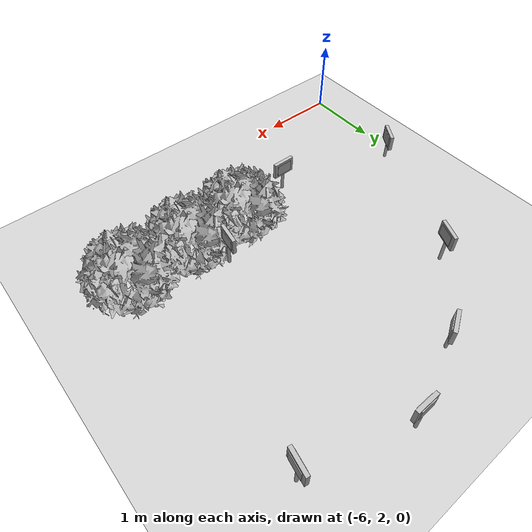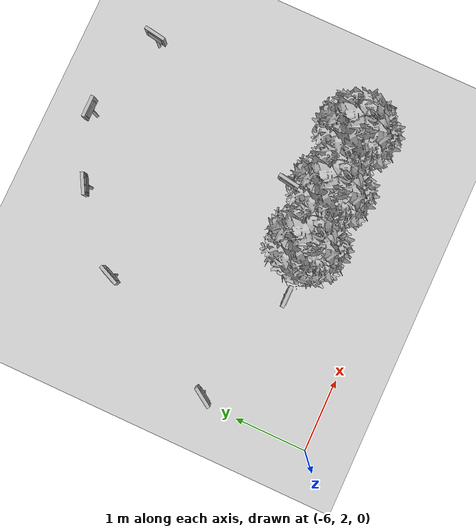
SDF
<sdf version="1.7">
 <world name="default">
  <model name="ground_plane">
   <static>1</static>
   <link name="link">
    <collision name="collision">
     <geometry><plane><normal>0 0 1</normal><size>100 100</size></plane></geometry>
     <surface>
      <contact><collide_bitmask>65535</collide_bitmask></contact>
      <friction><ode><mu>100</mu><mu2>50</mu2></ode></friction>
     </surface>
    </collision>
    <visual name="visual">
     <cast_shadows>0</cast_shadows>
     <geometry><plane><normal>0 0 1</normal><size>100 100</size></plane></geometry>
     <material>
      <script><uri>file://media/materials/scripts/gazebo.material</uri><name>Gazebo/Grey</name></script>
     </material>
    </visual>
   </link>
  </model>
  <model name="abbfre_7">
   <link name="link_0">
    <inertial>
     <mass>1</mass>
     <inertia>
      <ixx>0.166667</ixx>
      <ixy>0</ixy>
      <ixz>0</ixz>
      <iyy>0.166667</iyy>
      <iyz>0</iyz>
      <izz>0.166667</izz>
     </inertia>
    </inertial>
    <pose>0 0 -0 1.60917 -0 0</pose>
    <visual name="visual">
     <geometry><mesh><uri>model://abbfre/meshes/arbufres.obj</uri><scale>1 1 1</scale></mesh></geometry>
    </visual>
    <collision name="collision">
     <geometry><mesh><uri>model://abbfre/meshes/arbufres.obj</uri><scale>1 1 1</scale></mesh></geometry>
     <surface>
      <friction>
       <ode><mu>1</mu><mu2>1</mu2><fdir1>0 0 0</fdir1><slip1>0</slip1><slip2>0</slip2></ode>
       <torsional>
        <coefficient>1</coefficient>
        <patch_radius>0</patch_radius>
        <surface_radius>0</surface_radius>
        <use_patch_radius>1</use_patch_radius>
        <ode><slip>0</slip></ode>
       </torsional>
      </friction>
      <bounce><restitution_coefficient>0</restitution_coefficient><threshold>1e+06</threshold></bounce>
      <contact>
       <collide_without_contact>0</collide_without_contact>
       <collide_without_contact_bitmask>1</collide_without_contact_bitmask>
       <collide_bitmask>1</collide_bitmask>
       <ode>
        <soft_cfm>0</soft_cfm>
        <soft_erp>0.2</soft_erp>
        <kp>1e+13</kp>
        <kd>1</kd>
        <max_vel>0.01</max_vel>
        <min_depth>0</min_depth>
       </ode>
       <bullet>
        <split_impulse>1</split_impulse>
        <split_impulse_penetration_threshold>-0.01</split_impulse_penetration_threshold>
        <soft_cfm>0</soft_cfm>
        <soft_erp>0.2</soft_erp>
        <kp>1e+13</kp>
        <kd>1</kd>
       </bullet>
      </contact>
     </surface>
    </collision>
   </link>
   <static>1</static>
   <pose>-2.67738 3.21551 0 0 -0 0</pose>
  </model>
  <model name="letrero_riego_2">
   <link name="link_0">
    <inertial>
     <mass>0.0543151</mass>
     <inertia>
      <ixx>4.90351e-06</ixx>
      <ixy>0</ixy>
      <ixz>0</ixz>
      <iyy>4.90351e-06</iyy>
      <iyz>0</iyz>
      <izz>1.12837e-07</izz>
     </inertia>
    </inertial>
    <pose>0.002515 0.005109 0.153562 0 -0 0</pose>
    <visual name="visual">
     <geometry><cylinder><radius>0.0203836</radius><length>0.327243</length></cylinder></geometry>
     <material>
      <lighting>1</lighting>
      <script>
       <uri>model://letrero_riego/madera/scripts</uri>
       <uri>model://letrero_riego/madera/textures</uri>
       <name>textur/madera</name>
      </script>
      <shader type="pixel"/>
      <emissive>0 0 0 1</emissive>
     </material>
    </visual>
    <collision name="collision">
     <geometry><cylinder><radius>0.020384</radius><length>0.327243</length></cylinder></geometry>
     <surface>
      <friction>
       <ode><mu>1</mu><mu2>1</mu2><fdir1>0 0 0</fdir1><slip1>0</slip1><slip2>0</slip2></ode>
       <torsional>
        <coefficient>1</coefficient>
        <patch_radius>0</patch_radius>
        <surface_radius>0</surface_radius>
        <use_patch_radius>1</use_patch_radius>
        <ode><slip>0</slip></ode>
       </torsional>
      </friction>
      <bounce><restitution_coefficient>0</restitution_coefficient><threshold>1e+06</threshold></bounce>
      <contact>
       <collide_without_contact>0</collide_without_contact>
       <collide_without_contact_bitmask>1</collide_without_contact_bitmask>
       <collide_bitmask>1</collide_bitmask>
       <ode>
        <soft_cfm>0</soft_cfm>
        <soft_erp>0.2</soft_erp>
        <kp>1e+13</kp>
        <kd>1</kd>
        <max_vel>0.01</max_vel>
        <min_depth>0</min_depth>
       </ode>
       <bullet>
        <split_impulse>1</split_impulse>
        <split_impulse_penetration_threshold>-0.01</split_impulse_penetration_threshold>
        <soft_cfm>0</soft_cfm>
        <soft_erp>0.2</soft_erp>
        <kp>1e+13</kp>
        <kd>1</kd>
       </bullet>
      </contact>
     </surface>
    </collision>
   </link>
   <link name="link_1">
    <inertial>
     <mass>0.00299633</mass>
     <inertia>
      <ixx>1.27855e-05</ixx>
      <ixy>0</ixy>
      <ixz>0</ixz>
      <iyy>3.42923e-05</iyy>
      <iyz>0</iyz>
      <izz>2.25402e-05</izz>
     </inertia>
    </inertial>
    <pose>-0.001542 0.002452 0.422031 0 -0 0</pose>
    <visual name="visual">
     <geometry><box><size>0.296988 0.04549 0.221665</size></box></geometry>
     <material>
      <lighting>1</lighting>
      <script>
       <uri>model://letrero_riego/madera/scripts</uri>
       <uri>model://letrero_riego/madera/textures</uri>
       <name>textur/madera</name>
      </script>
      <shader type="pixel"/>
      <emissive>0 0 0 1</emissive>
     </material>
    </visual>
    <collision name="collision">
     <geometry><box><size>0.296988 0.04549 0.221665</size></box></geometry>
     <surface>
      <friction>
       <ode><mu>1</mu><mu2>1</mu2><fdir1>0 0 0</fdir1><slip1>0</slip1><slip2>0</slip2></ode>
       <torsional>
        <coefficient>1</coefficient>
        <patch_radius>0</patch_radius>
        <surface_radius>0</surface_radius>
        <use_patch_radius>1</use_patch_radius>
        <ode><slip>0</slip></ode>
       </torsional>
      </friction>
      <bounce><restitution_coefficient>0</restitution_coefficient><threshold>1e+06</threshold></bounce>
      <contact>
       <collide_without_contact>0</collide_without_contact>
       <collide_without_contact_bitmask>1</collide_without_contact_bitmask>
       <collide_bitmask>1</collide_bitmask>
       <ode>
        <soft_cfm>0</soft_cfm>
        <soft_erp>0.2</soft_erp>
        <kp>1e+13</kp>
        <kd>1</kd>
        <max_vel>0.01</max_vel>
        <min_depth>0</min_depth>
       </ode>
       <bullet>
        <split_impulse>1</split_impulse>
        <split_impulse_penetration_threshold>-0.01</split_impulse_penetration_threshold>
        <soft_cfm>0</soft_cfm>
        <soft_erp>0.2</soft_erp>
        <kp>1e+13</kp>
        <kd>1</kd>
       </bullet>
      </contact>
     </surface>
    </collision>
   </link>
   <link name="link_2">
    <inertial>
     <mass>0.00173577</mass>
     <inertia>
      <ixx>4.23206e-06</ixx>
      <ixy>0</ixy>
      <ixz>0</ixz>
      <iyy>1.03921e-05</iyy>
      <iyz>0</iyz>
      <izz>7.37287e-06</izz>
     </inertia>
    </inertial>
    <pose>-0.010225 0.002657 0.421501 0 -0 0</pose>
    <visual name="visual">
     <geometry><box><size>0.216284 0.064749 0.15832</size></box></geometry>
     <material>
      <lighting>1</lighting>
      <script>
       <uri>model://letrero_riego/materials/scripts</uri>
       <uri>model://letrero_riego/materials/textures</uri>
       <name>textur/riego</name>
      </script>
      <shader type="pixel"/>
      <emissive>0 0 0 1</emissive>
     </material>
    </visual>
    <collision name="collision">
     <geometry><box><size>0.216284 0.064749 0.15832</size></box></geometry>
     <surface>
      <friction>
       <ode><mu>1</mu><mu2>1</mu2><fdir1>0 0 0</fdir1><slip1>0</slip1><slip2>0</slip2></ode>
       <torsional>
        <coefficient>1</coefficient>
        <patch_radius>0</patch_radius>
        <surface_radius>0</surface_radius>
        <use_patch_radius>1</use_patch_radius>
        <ode><slip>0</slip></ode>
       </torsional>
      </friction>
      <bounce><restitution_coefficient>0</restitution_coefficient><threshold>1e+06</threshold></bounce>
      <contact>
       <collide_without_contact>0</collide_without_contact>
       <collide_without_contact_bitmask>1</collide_without_contact_bitmask>
       <collide_bitmask>1</collide_bitmask>
       <ode>
        <soft_cfm>0</soft_cfm>
        <soft_erp>0.2</soft_erp>
        <kp>1e+13</kp>
        <kd>1</kd>
        <max_vel>0.01</max_vel>
        <min_depth>0</min_depth>
       </ode>
       <bullet>
        <split_impulse>1</split_impulse>
        <split_impulse_penetration_threshold>-0.01</split_impulse_penetration_threshold>
        <soft_cfm>0</soft_cfm>
        <soft_erp>0.2</soft_erp>
        <kp>1e+13</kp>
        <kd>1</kd>
       </bullet>
      </contact>
     </surface>
    </collision>
   </link>
   <joint name="link_0_JOINT_1" type="fixed">
    <parent>link_0</parent>
    <child>link_1</child>
    <physics>
     <ode><limit><cfm>0</cfm><erp>0.2</erp></limit><suspension><cfm>0</cfm><erp>0.2</erp></suspension></ode>
    </physics>
   </joint>
   <joint name="link_0_JOINT_2" type="fixed">
    <parent>link_0</parent>
    <child>link_2</child>
    <physics>
     <ode><limit><cfm>0</cfm><erp>0.2</erp></limit><suspension><cfm>0</cfm><erp>0.2</erp></suspension></ode>
    </physics>
   </joint>
   <static>1</static>
   <pose>-4.93844 5.24039 0 0 -0 1.14693</pose>
  </model>
  <model name="letrero_fresas_II_3">
   <link name="link_0">
    <inertial>
     <mass>0.0543151</mass>
     <inertia>
      <ixx>4.90351e-06</ixx>
      <ixy>0</ixy>
      <ixz>0</ixz>
      <iyy>4.90351e-06</iyy>
      <iyz>0</iyz>
      <izz>1.12837e-07</izz>
     </inertia>
    </inertial>
    <pose>0.002515 0.005109 0.153562 0 -0 0</pose>
    <visual name="visual">
     <geometry><cylinder><radius>0.0203836</radius><length>0.327243</length></cylinder></geometry>
     <material>
      <lighting>1</lighting>
      <script>
       <uri>model://letrero_fresas_II/madera/scripts</uri>
       <uri>model://letrero_fresas_II/madera/textures</uri>
       <name>textur/madera</name>
      </script>
      <shader type="pixel"/>
      <emissive>0 0 0 1</emissive>
     </material>
    </visual>
    <collision name="collision">
     <geometry><cylinder><radius>0.020384</radius><length>0.327243</length></cylinder></geometry>
     <surface>
      <friction>
       <ode><mu>1</mu><mu2>1</mu2><fdir1>0 0 0</fdir1><slip1>0</slip1><slip2>0</slip2></ode>
       <torsional>
        <coefficient>1</coefficient>
        <patch_radius>0</patch_radius>
        <surface_radius>0</surface_radius>
        <use_patch_radius>1</use_patch_radius>
        <ode><slip>0</slip></ode>
       </torsional>
      </friction>
      <bounce><restitution_coefficient>0</restitution_coefficient><threshold>1e+06</threshold></bounce>
      <contact>
       <collide_without_contact>0</collide_without_contact>
       <collide_without_contact_bitmask>1</collide_without_contact_bitmask>
       <collide_bitmask>1</collide_bitmask>
       <ode>
        <soft_cfm>0</soft_cfm>
        <soft_erp>0.2</soft_erp>
        <kp>1e+13</kp>
        <kd>1</kd>
        <max_vel>0.01</max_vel>
        <min_depth>0</min_depth>
       </ode>
       <bullet>
        <split_impulse>1</split_impulse>
        <split_impulse_penetration_threshold>-0.01</split_impulse_penetration_threshold>
        <soft_cfm>0</soft_cfm>
        <soft_erp>0.2</soft_erp>
        <kp>1e+13</kp>
        <kd>1</kd>
       </bullet>
      </contact>
     </surface>
    </collision>
   </link>
   <link name="link_1">
    <inertial>
     <mass>0.00299633</mass>
     <inertia>
      <ixx>1.27855e-05</ixx>
      <ixy>0</ixy>
      <ixz>0</ixz>
      <iyy>3.42923e-05</iyy>
      <iyz>0</iyz>
      <izz>2.25402e-05</izz>
     </inertia>
    </inertial>
    <pose>-0.001542 0.002452 0.422031 0 -0 0</pose>
    <visual name="visual">
     <geometry><box><size>0.296988 0.04549 0.221665</size></box></geometry>
     <material>
      <lighting>1</lighting>
      <script>
       <uri>model://letrero_fresas_II/madera/scripts</uri>
       <uri>model://letrero_fresas_II/madera/textures</uri>
       <name>textur/madera</name>
      </script>
      <shader type="pixel"/>
      <emissive>0 0 0 1</emissive>
     </material>
    </visual>
    <collision name="collision">
     <geometry><box><size>0.296988 0.04549 0.221665</size></box></geometry>
     <surface>
      <friction>
       <ode><mu>1</mu><mu2>1</mu2><fdir1>0 0 0</fdir1><slip1>0</slip1><slip2>0</slip2></ode>
       <torsional>
        <coefficient>1</coefficient>
        <patch_radius>0</patch_radius>
        <surface_radius>0</surface_radius>
        <use_patch_radius>1</use_patch_radius>
        <ode><slip>0</slip></ode>
       </torsional>
      </friction>
      <bounce><restitution_coefficient>0</restitution_coefficient><threshold>1e+06</threshold></bounce>
      <contact>
       <collide_without_contact>0</collide_without_contact>
       <collide_without_contact_bitmask>1</collide_without_contact_bitmask>
       <collide_bitmask>1</collide_bitmask>
       <ode>
        <soft_cfm>0</soft_cfm>
        <soft_erp>0.2</soft_erp>
        <kp>1e+13</kp>
        <kd>1</kd>
        <max_vel>0.01</max_vel>
        <min_depth>0</min_depth>
       </ode>
       <bullet>
        <split_impulse>1</split_impulse>
        <split_impulse_penetration_threshold>-0.01</split_impulse_penetration_threshold>
        <soft_cfm>0</soft_cfm>
        <soft_erp>0.2</soft_erp>
        <kp>1e+13</kp>
        <kd>1</kd>
       </bullet>
      </contact>
     </surface>
    </collision>
   </link>
   <link name="link_2">
    <inertial>
     <mass>0.00173577</mass>
     <inertia>
      <ixx>4.23206e-06</ixx>
      <ixy>0</ixy>
      <ixz>0</ixz>
      <iyy>1.03921e-05</iyy>
      <iyz>0</iyz>
      <izz>7.37287e-06</izz>
     </inertia>
    </inertial>
    <pose>-0.010225 0.002657 0.421501 0 -0 0</pose>
    <visual name="visual">
     <geometry><box><size>0.216284 0.064749 0.15832</size></box></geometry>
     <material>
      <lighting>1</lighting>
      <script>
       <uri>model://letrero_fresas_II/materials/scripts</uri>
       <uri>model://letrero_fresas_II/materials/textures</uri>
       <name>textur/difres</name>
      </script>
      <shader type="pixel"/>
      <emissive>0 0 0 1</emissive>
     </material>
    </visual>
    <collision name="collision">
     <geometry><box><size>0.216284 0.064749 0.15832</size></box></geometry>
     <surface>
      <friction>
       <ode><mu>1</mu><mu2>1</mu2><fdir1>0 0 0</fdir1><slip1>0</slip1><slip2>0</slip2></ode>
       <torsional>
        <coefficient>1</coefficient>
        <patch_radius>0</patch_radius>
        <surface_radius>0</surface_radius>
        <use_patch_radius>1</use_patch_radius>
        <ode><slip>0</slip></ode>
       </torsional>
      </friction>
      <bounce><restitution_coefficient>0</restitution_coefficient><threshold>1e+06</threshold></bounce>
      <contact>
       <collide_without_contact>0</collide_without_contact>
       <collide_without_contact_bitmask>1</collide_without_contact_bitmask>
       <collide_bitmask>1</collide_bitmask>
       <ode>
        <soft_cfm>0</soft_cfm>
        <soft_erp>0.2</soft_erp>
        <kp>1e+13</kp>
        <kd>1</kd>
        <max_vel>0.01</max_vel>
        <min_depth>0</min_depth>
       </ode>
       <bullet>
        <split_impulse>1</split_impulse>
        <split_impulse_penetration_threshold>-0.01</split_impulse_penetration_threshold>
        <soft_cfm>0</soft_cfm>
        <soft_erp>0.2</soft_erp>
        <kp>1e+13</kp>
        <kd>1</kd>
       </bullet>
      </contact>
     </surface>
    </collision>
   </link>
   <joint name="link_0_JOINT_1" type="fixed">
    <parent>link_0</parent>
    <child>link_1</child>
    <physics>
     <ode><limit><cfm>0</cfm><erp>0.2</erp></limit><suspension><cfm>0</cfm><erp>0.2</erp></suspension></ode>
    </physics>
   </joint>
   <joint name="link_0_JOINT_2" type="fixed">
    <parent>link_0</parent>
    <child>link_2</child>
    <physics>
     <ode><limit><cfm>0</cfm><erp>0.2</erp></limit><suspension><cfm>0</cfm><erp>0.2</erp></suspension></ode>
    </physics>
   </joint>
   <static>1</static>
   <pose>-2.90821 3.66266 0 0 0 -1.72951</pose>
  </model>
  <model name="letrero_insecto_3">
   <link name="link_0">
    <inertial>
     <mass>0.00543151</mass>
     <inertia>
      <ixx>4.90351e-06</ixx>
      <ixy>0</ixy>
      <ixz>0</ixz>
      <iyy>4.90351e-06</iyy>
      <iyz>0</iyz>
      <izz>1.12837e-07</izz>
     </inertia>
    </inertial>
    <pose>0.002372 -0.000902 -0.178803 0 -0 0</pose>
    <visual name="visual">
     <geometry><cylinder><radius>0.0203836</radius><length>0.327243</length></cylinder></geometry>
     <material>
      <lighting>1</lighting>
      <script>
       <uri>model://letrero_insecto/madera/scripts</uri>
       <uri>model://letrero_insecto/madera/textures</uri>
       <name>textur/madera</name>
      </script>
      <shader type="pixel"/>
      <emissive>0 0 0 1</emissive>
     </material>
    </visual>
    <collision name="collision">
     <geometry><cylinder><radius>0.020384</radius><length>0.327243</length></cylinder></geometry>
     <surface>
      <friction>
       <ode><mu>1</mu><mu2>1</mu2><fdir1>0 0 0</fdir1><slip1>0</slip1><slip2>0</slip2></ode>
       <torsional>
        <coefficient>1</coefficient>
        <patch_radius>0</patch_radius>
        <surface_radius>0</surface_radius>
        <use_patch_radius>1</use_patch_radius>
        <ode><slip>0</slip></ode>
       </torsional>
      </friction>
      <bounce><restitution_coefficient>0</restitution_coefficient><threshold>1e+06</threshold></bounce>
      <contact>
       <collide_without_contact>0</collide_without_contact>
       <collide_without_contact_bitmask>1</collide_without_contact_bitmask>
       <collide_bitmask>1</collide_bitmask>
       <ode>
        <soft_cfm>0</soft_cfm>
        <soft_erp>0.2</soft_erp>
        <kp>1e+13</kp>
        <kd>1</kd>
        <max_vel>0.01</max_vel>
        <min_depth>0</min_depth>
       </ode>
       <bullet>
        <split_impulse>1</split_impulse>
        <split_impulse_penetration_threshold>-0.01</split_impulse_penetration_threshold>
        <soft_cfm>0</soft_cfm>
        <soft_erp>0.2</soft_erp>
        <kp>1e+13</kp>
        <kd>1</kd>
       </bullet>
      </contact>
     </surface>
    </collision>
   </link>
   <link name="link_1">
    <inertial>
     <mass>0.00299633</mass>
     <inertia>
      <ixx>1.27855e-05</ixx>
      <ixy>0</ixy>
      <ixz>0</ixz>
      <iyy>3.42923e-05</iyy>
      <iyz>0</iyz>
      <izz>2.25402e-05</izz>
     </inertia>
    </inertial>
    <pose>-0.001685 -0.003559 0.089666 0 -0 0</pose>
    <visual name="visual">
     <geometry><box><size>0.296988 0.04549 0.221665</size></box></geometry>
     <material>
      <lighting>1</lighting>
      <script>
       <uri>model://letrero_insecto/madera/scripts</uri>
       <uri>model://letrero_insecto/madera/textures</uri>
       <name>textur/madera</name>
      </script>
      <shader type="pixel"/>
      <emissive>0 0 0 1</emissive>
     </material>
    </visual>
    <collision name="collision">
     <geometry><box><size>0.296988 0.04549 0.221665</size></box></geometry>
     <surface>
      <friction>
       <ode><mu>1</mu><mu2>1</mu2><fdir1>0 0 0</fdir1><slip1>0</slip1><slip2>0</slip2></ode>
       <torsional>
        <coefficient>1</coefficient>
        <patch_radius>0</patch_radius>
        <surface_radius>0</surface_radius>
        <use_patch_radius>1</use_patch_radius>
        <ode><slip>0</slip></ode>
       </torsional>
      </friction>
      <bounce><restitution_coefficient>0</restitution_coefficient><threshold>1e+06</threshold></bounce>
      <contact>
       <collide_without_contact>0</collide_without_contact>
       <collide_without_contact_bitmask>1</collide_without_contact_bitmask>
       <collide_bitmask>1</collide_bitmask>
       <ode>
        <soft_cfm>0</soft_cfm>
        <soft_erp>0.2</soft_erp>
        <kp>1e+13</kp>
        <kd>1</kd>
        <max_vel>0.01</max_vel>
        <min_depth>0</min_depth>
       </ode>
       <bullet>
        <split_impulse>1</split_impulse>
        <split_impulse_penetration_threshold>-0.01</split_impulse_penetration_threshold>
        <soft_cfm>0</soft_cfm>
        <soft_erp>0.2</soft_erp>
        <kp>1e+13</kp>
        <kd>1</kd>
       </bullet>
      </contact>
     </surface>
    </collision>
   </link>
   <link name="link_2">
    <inertial>
     <mass>0.00219695</mass>
     <inertia>
      <ixx>5.34209e-06</ixx>
      <ixy>0</ixy>
      <ixz>0</ixz>
      <iyy>1.31531e-05</iyy>
      <iyz>0</iyz>
      <izz>9.31738e-06</izz>
     </inertia>
    </inertial>
    <pose>-0.001275 -0.005928 0.089136 0 -0 0</pose>
    <visual name="visual">
     <geometry><box><size>0.216284 0.06414 0.15832</size></box></geometry>
     <material>
      <lighting>1</lighting>
      <script>
       <uri>model://letrero_insecto/materials/scripts</uri>
       <uri>model://letrero_insecto/materials/textures</uri>
       <name>textur/insec</name>
      </script>
      <shader type="pixel"/>
      <emissive>0 0 0 1</emissive>
     </material>
    </visual>
    <collision name="collision">
     <geometry><box><size>0.216284 0.06414 0.15832</size></box></geometry>
     <surface>
      <friction>
       <ode><mu>1</mu><mu2>1</mu2><fdir1>0 0 0</fdir1><slip1>0</slip1><slip2>0</slip2></ode>
       <torsional>
        <coefficient>1</coefficient>
        <patch_radius>0</patch_radius>
        <surface_radius>0</surface_radius>
        <use_patch_radius>1</use_patch_radius>
        <ode><slip>0</slip></ode>
       </torsional>
      </friction>
      <bounce><restitution_coefficient>0</restitution_coefficient><threshold>1e+06</threshold></bounce>
      <contact>
       <collide_without_contact>0</collide_without_contact>
       <collide_without_contact_bitmask>1</collide_without_contact_bitmask>
       <collide_bitmask>1</collide_bitmask>
       <ode>
        <soft_cfm>0</soft_cfm>
        <soft_erp>0.2</soft_erp>
        <kp>1e+13</kp>
        <kd>1</kd>
        <max_vel>0.01</max_vel>
        <min_depth>0</min_depth>
       </ode>
       <bullet>
        <split_impulse>1</split_impulse>
        <split_impulse_penetration_threshold>-0.01</split_impulse_penetration_threshold>
        <soft_cfm>0</soft_cfm>
        <soft_erp>0.2</soft_erp>
        <kp>1e+13</kp>
        <kd>1</kd>
       </bullet>
      </contact>
     </surface>
    </collision>
   </link>
   <joint name="link_0_JOINT_1" type="fixed">
    <parent>link_0</parent>
    <child>link_1</child>
    <physics>
     <ode><limit><cfm>0</cfm><erp>0.2</erp></limit><suspension><cfm>0</cfm><erp>0.2</erp></suspension></ode>
    </physics>
   </joint>
   <joint name="link_0_JOINT_2" type="fixed">
    <parent>link_0</parent>
    <child>link_2</child>
    <physics>
     <ode><limit><cfm>0</cfm><erp>0.2</erp></limit><suspension><cfm>0</cfm><erp>0.2</erp></suspension></ode>
    </physics>
   </joint>
   <static>1</static>
   <pose>-4.02372 6.04739 0.301064 0 -0 0.508877</pose>
  </model>
  <model name="letrero_pajaro_3">
   <link name="link_0">
    <inertial>
     <mass>0.0543151</mass>
     <inertia>
      <ixx>4.90351e-06</ixx>
      <ixy>0</ixy>
      <ixz>0</ixz>
      <iyy>4.90351e-06</iyy>
      <iyz>0</iyz>
      <izz>1.12837e-07</izz>
     </inertia>
    </inertial>
    <pose>0.002515 0.005109 0.153562 0 -0 0</pose>
    <visual name="visual">
     <geometry><cylinder><radius>0.0203836</radius><length>0.327243</length></cylinder></geometry>
     <material>
      <lighting>1</lighting>
      <script>
       <uri>model://letrero_pajaro/madera/scripts</uri>
       <uri>model://letrero_pajaro/madera/textures</uri>
       <name>textur/madera</name>
      </script>
      <shader type="pixel"/>
      <emissive>0 0 0 1</emissive>
     </material>
    </visual>
    <collision name="collision">
     <geometry><cylinder><radius>0.020384</radius><length>0.327243</length></cylinder></geometry>
     <surface>
      <friction>
       <ode><mu>1</mu><mu2>1</mu2><fdir1>0 0 0</fdir1><slip1>0</slip1><slip2>0</slip2></ode>
       <torsional>
        <coefficient>1</coefficient>
        <patch_radius>0</patch_radius>
        <surface_radius>0</surface_radius>
        <use_patch_radius>1</use_patch_radius>
        <ode><slip>0</slip></ode>
       </torsional>
      </friction>
      <bounce><restitution_coefficient>0</restitution_coefficient><threshold>1e+06</threshold></bounce>
      <contact>
       <collide_without_contact>0</collide_without_contact>
       <collide_without_contact_bitmask>1</collide_without_contact_bitmask>
       <collide_bitmask>1</collide_bitmask>
       <ode>
        <soft_cfm>0</soft_cfm>
        <soft_erp>0.2</soft_erp>
        <kp>1e+13</kp>
        <kd>1</kd>
        <max_vel>0.01</max_vel>
        <min_depth>0</min_depth>
       </ode>
       <bullet>
        <split_impulse>1</split_impulse>
        <split_impulse_penetration_threshold>-0.01</split_impulse_penetration_threshold>
        <soft_cfm>0</soft_cfm>
        <soft_erp>0.2</soft_erp>
        <kp>1e+13</kp>
        <kd>1</kd>
       </bullet>
      </contact>
     </surface>
    </collision>
   </link>
   <link name="link_1">
    <inertial>
     <mass>0.00299633</mass>
     <inertia>
      <ixx>1.27855e-05</ixx>
      <ixy>0</ixy>
      <ixz>0</ixz>
      <iyy>3.42923e-05</iyy>
      <iyz>0</iyz>
      <izz>2.25402e-05</izz>
     </inertia>
    </inertial>
    <pose>-0.001542 0.002452 0.422031 0 -0 0</pose>
    <visual name="visual">
     <geometry><box><size>0.296988 0.04549 0.221665</size></box></geometry>
     <material>
      <lighting>1</lighting>
      <script>
       <uri>model://letrero_pajaro/madera/scripts</uri>
       <uri>model://letrero_pajaro/madera/textures</uri>
       <name>textur/madera</name>
      </script>
      <shader type="pixel"/>
      <emissive>0 0 0 1</emissive>
     </material>
    </visual>
    <collision name="collision">
     <geometry><box><size>0.296988 0.04549 0.221665</size></box></geometry>
     <surface>
      <friction>
       <ode><mu>1</mu><mu2>1</mu2><fdir1>0 0 0</fdir1><slip1>0</slip1><slip2>0</slip2></ode>
       <torsional>
        <coefficient>1</coefficient>
        <patch_radius>0</patch_radius>
        <surface_radius>0</surface_radius>
        <use_patch_radius>1</use_patch_radius>
        <ode><slip>0</slip></ode>
       </torsional>
      </friction>
      <bounce><restitution_coefficient>0</restitution_coefficient><threshold>1e+06</threshold></bounce>
      <contact>
       <collide_without_contact>0</collide_without_contact>
       <collide_without_contact_bitmask>1</collide_without_contact_bitmask>
       <collide_bitmask>1</collide_bitmask>
       <ode>
        <soft_cfm>0</soft_cfm>
        <soft_erp>0.2</soft_erp>
        <kp>1e+13</kp>
        <kd>1</kd>
        <max_vel>0.01</max_vel>
        <min_depth>0</min_depth>
       </ode>
       <bullet>
        <split_impulse>1</split_impulse>
        <split_impulse_penetration_threshold>-0.01</split_impulse_penetration_threshold>
        <soft_cfm>0</soft_cfm>
        <soft_erp>0.2</soft_erp>
        <kp>1e+13</kp>
        <kd>1</kd>
       </bullet>
      </contact>
     </surface>
    </collision>
   </link>
   <link name="link_2">
    <inertial>
     <mass>0.00173577</mass>
     <inertia>
      <ixx>4.23206e-06</ixx>
      <ixy>0</ixy>
      <ixz>0</ixz>
      <iyy>1.03921e-05</iyy>
      <iyz>0</iyz>
      <izz>7.37287e-06</izz>
     </inertia>
    </inertial>
    <pose>-0.010225 0.002657 0.421501 0 -0 0</pose>
    <visual name="visual">
     <geometry><box><size>0.216284 0.064749 0.15832</size></box></geometry>
     <material>
      <lighting>1</lighting>
      <script>
       <uri>model://letrero_pajaro/materials/scripts</uri>
       <uri>model://letrero_pajaro/materials/textures</uri>
       <name>textur/paj</name>
      </script>
      <shader type="pixel"/>
      <emissive>0 0 0 1</emissive>
     </material>
    </visual>
    <collision name="collision">
     <geometry><box><size>0.216284 0.064749 0.15832</size></box></geometry>
     <surface>
      <friction>
       <ode><mu>1</mu><mu2>1</mu2><fdir1>0 0 0</fdir1><slip1>0</slip1><slip2>0</slip2></ode>
       <torsional>
        <coefficient>1</coefficient>
        <patch_radius>0</patch_radius>
        <surface_radius>0</surface_radius>
        <use_patch_radius>1</use_patch_radius>
        <ode><slip>0</slip></ode>
       </torsional>
      </friction>
      <bounce><restitution_coefficient>0</restitution_coefficient><threshold>1e+06</threshold></bounce>
      <contact>
       <collide_without_contact>0</collide_without_contact>
       <collide_without_contact_bitmask>1</collide_without_contact_bitmask>
       <collide_bitmask>1</collide_bitmask>
       <ode>
        <soft_cfm>0</soft_cfm>
        <soft_erp>0.2</soft_erp>
        <kp>1e+13</kp>
        <kd>1</kd>
        <max_vel>0.01</max_vel>
        <min_depth>0</min_depth>
       </ode>
       <bullet>
        <split_impulse>1</split_impulse>
        <split_impulse_penetration_threshold>-0.01</split_impulse_penetration_threshold>
        <soft_cfm>0</soft_cfm>
        <soft_erp>0.2</soft_erp>
        <kp>1e+13</kp>
        <kd>1</kd>
       </bullet>
      </contact>
     </surface>
    </collision>
   </link>
   <joint name="link_0_JOINT_1" type="fixed">
    <parent>link_0</parent>
    <child>link_1</child>
    <physics>
     <ode><limit><cfm>0</cfm><erp>0.2</erp></limit><suspension><cfm>0</cfm><erp>0.2</erp></suspension></ode>
    </physics>
   </joint>
   <joint name="link_0_JOINT_2" type="fixed">
    <parent>link_0</parent>
    <child>link_2</child>
    <physics>
     <ode><limit><cfm>0</cfm><erp>0.2</erp></limit><suspension><cfm>0</cfm><erp>0.2</erp></suspension></ode>
    </physics>
   </joint>
   <static>1</static>
   <pose>-1.86587 6.04014 -0.049337 0 -0 1.40164</pose>
  </model>
  <model name="letrero_cheems_2">
   <link name="link_0">
    <inertial>
     <mass>0.00543151</mass>
     <inertia>
      <ixx>4.90351e-06</ixx>
      <ixy>0</ixy>
      <ixz>0</ixz>
      <iyy>4.90351e-06</iyy>
      <iyz>0</iyz>
      <izz>1.12837e-07</izz>
     </inertia>
    </inertial>
    <pose>0.002372 -0.000902 -0.178803 0 -0 0</pose>
    <visual name="visual">
     <geometry><cylinder><radius>0.0203836</radius><length>0.327243</length></cylinder></geometry>
     <material>
      <lighting>1</lighting>
      <script>
       <uri>model://letrero_cheems/madera/scripts</uri>
       <uri>model://letrero_cheems/madera/textures</uri>
       <name>textur/madera</name>
      </script>
      <shader type="pixel"/>
      <emissive>0 0 0 1</emissive>
     </material>
    </visual>
    <collision name="collision">
     <geometry><cylinder><radius>0.020384</radius><length>0.327243</length></cylinder></geometry>
     <surface>
      <friction>
       <ode><mu>1</mu><mu2>1</mu2><fdir1>0 0 0</fdir1><slip1>0</slip1><slip2>0</slip2></ode>
       <torsional>
        <coefficient>1</coefficient>
        <patch_radius>0</patch_radius>
        <surface_radius>0</surface_radius>
        <use_patch_radius>1</use_patch_radius>
        <ode><slip>0</slip></ode>
       </torsional>
      </friction>
      <bounce><restitution_coefficient>0</restitution_coefficient><threshold>1e+06</threshold></bounce>
      <contact>
       <collide_without_contact>0</collide_without_contact>
       <collide_without_contact_bitmask>1</collide_without_contact_bitmask>
       <collide_bitmask>1</collide_bitmask>
       <ode>
        <soft_cfm>0</soft_cfm>
        <soft_erp>0.2</soft_erp>
        <kp>1e+13</kp>
        <kd>1</kd>
        <max_vel>0.01</max_vel>
        <min_depth>0</min_depth>
       </ode>
       <bullet>
        <split_impulse>1</split_impulse>
        <split_impulse_penetration_threshold>-0.01</split_impulse_penetration_threshold>
        <soft_cfm>0</soft_cfm>
        <soft_erp>0.2</soft_erp>
        <kp>1e+13</kp>
        <kd>1</kd>
       </bullet>
      </contact>
     </surface>
    </collision>
   </link>
   <link name="link_1">
    <inertial>
     <mass>0.00299633</mass>
     <inertia>
      <ixx>1.27855e-05</ixx>
      <ixy>0</ixy>
      <ixz>0</ixz>
      <iyy>3.42923e-05</iyy>
      <iyz>0</iyz>
      <izz>2.25402e-05</izz>
     </inertia>
    </inertial>
    <pose>-0.001685 -0.003559 0.089666 0 -0 0</pose>
    <visual name="visual">
     <geometry><box><size>0.296988 0.04549 0.221665</size></box></geometry>
     <material>
      <lighting>1</lighting>
      <script>
       <uri>model://letrero_cheems/madera/scripts</uri>
       <uri>model://letrero_cheems/madera/textures</uri>
       <name>textur/madera</name>
      </script>
      <shader type="pixel"/>
      <emissive>0 0 0 1</emissive>
     </material>
    </visual>
    <collision name="collision">
     <geometry><box><size>0.296988 0.04549 0.221665</size></box></geometry>
     <surface>
      <friction>
       <ode><mu>1</mu><mu2>1</mu2><fdir1>0 0 0</fdir1><slip1>0</slip1><slip2>0</slip2></ode>
       <torsional>
        <coefficient>1</coefficient>
        <patch_radius>0</patch_radius>
        <surface_radius>0</surface_radius>
        <use_patch_radius>1</use_patch_radius>
        <ode><slip>0</slip></ode>
       </torsional>
      </friction>
      <bounce><restitution_coefficient>0</restitution_coefficient><threshold>1e+06</threshold></bounce>
      <contact>
       <collide_without_contact>0</collide_without_contact>
       <collide_without_contact_bitmask>1</collide_without_contact_bitmask>
       <collide_bitmask>1</collide_bitmask>
       <ode>
        <soft_cfm>0</soft_cfm>
        <soft_erp>0.2</soft_erp>
        <kp>1e+13</kp>
        <kd>1</kd>
        <max_vel>0.01</max_vel>
        <min_depth>0</min_depth>
       </ode>
       <bullet>
        <split_impulse>1</split_impulse>
        <split_impulse_penetration_threshold>-0.01</split_impulse_penetration_threshold>
        <soft_cfm>0</soft_cfm>
        <soft_erp>0.2</soft_erp>
        <kp>1e+13</kp>
        <kd>1</kd>
       </bullet>
      </contact>
     </surface>
    </collision>
   </link>
   <link name="link_2">
    <inertial>
     <mass>0.00219695</mass>
     <inertia>
      <ixx>5.34209e-06</ixx>
      <ixy>0</ixy>
      <ixz>0</ixz>
      <iyy>1.31531e-05</iyy>
      <iyz>0</iyz>
      <izz>9.31738e-06</izz>
     </inertia>
    </inertial>
    <pose>-0.001275 -0.005928 0.089136 0 -0 0</pose>
    <visual name="visual">
     <geometry><box><size>0.216284 0.06414 0.15832</size></box></geometry>
     <material>
      <lighting>1</lighting>
      <script>
       <uri>model://letrero_cheems/materials/scripts</uri>
       <uri>model://letrero_cheems/materials/textures</uri>
       <name>textur/cheems</name>
      </script>
      <shader type="pixel"/>
      <emissive>0 0 0 1</emissive>
     </material>
    </visual>
    <collision name="collision">
     <geometry><box><size>0.216284 0.06414 0.15832</size></box></geometry>
     <surface>
      <friction>
       <ode><mu>1</mu><mu2>1</mu2><fdir1>0 0 0</fdir1><slip1>0</slip1><slip2>0</slip2></ode>
       <torsional>
        <coefficient>1</coefficient>
        <patch_radius>0</patch_radius>
        <surface_radius>0</surface_radius>
        <use_patch_radius>1</use_patch_radius>
        <ode><slip>0</slip></ode>
       </torsional>
      </friction>
      <bounce><restitution_coefficient>0</restitution_coefficient><threshold>1e+06</threshold></bounce>
      <contact>
       <collide_without_contact>0</collide_without_contact>
       <collide_without_contact_bitmask>1</collide_without_contact_bitmask>
       <collide_bitmask>1</collide_bitmask>
       <ode>
        <soft_cfm>0</soft_cfm>
        <soft_erp>0.2</soft_erp>
        <kp>1e+13</kp>
        <kd>1</kd>
        <max_vel>0.01</max_vel>
        <min_depth>0</min_depth>
       </ode>
       <bullet>
        <split_impulse>1</split_impulse>
        <split_impulse_penetration_threshold>-0.01</split_impulse_penetration_threshold>
        <soft_cfm>0</soft_cfm>
        <soft_erp>0.2</soft_erp>
        <kp>1e+13</kp>
        <kd>1</kd>
       </bullet>
      </contact>
     </surface>
    </collision>
   </link>
   <joint name="link_0_JOINT_1" type="fixed">
    <parent>link_0</parent>
    <child>link_1</child>
    <physics>
     <ode><limit><cfm>0</cfm><erp>0.2</erp></limit><suspension><cfm>0</cfm><erp>0.2</erp></suspension></ode>
    </physics>
   </joint>
   <joint name="link_0_JOINT_2" type="fixed">
    <parent>link_0</parent>
    <child>link_2</child>
    <physics>
     <ode><limit><cfm>0</cfm><erp>0.2</erp></limit><suspension><cfm>0</cfm><erp>0.2</erp></suspension></ode>
    </physics>
   </joint>
   <static>1</static>
   <pose>-5.8539 3.52658 0.243463 0 -0 0.995347</pose>
  </model>
  <model name="letrero_fresa_4">
   <link name="link_0">
    <inertial>
     <mass>0.00543151</mass>
     <inertia>
      <ixx>4.90351e-06</ixx>
      <ixy>0</ixy>
      <ixz>0</ixz>
      <iyy>4.90351e-06</iyy>
      <iyz>0</iyz>
      <izz>1.12837e-07</izz>
     </inertia>
    </inertial>
    <pose>0.002372 -0.000902 -0.178803 0 -0 0</pose>
    <visual name="visual">
     <geometry><cylinder><radius>0.0203836</radius><length>0.327243</length></cylinder></geometry>
     <material>
      <lighting>1</lighting>
      <script>
       <uri>model://letrero_fresa/madera/scripts</uri>
       <uri>model://letrero_fresa/madera/textures</uri>
       <name>textur/madera</name>
      </script>
      <shader type="pixel"/>
      <emissive>0 0 0 1</emissive>
     </material>
    </visual>
    <collision name="collision">
     <geometry><cylinder><radius>0.020384</radius><length>0.327243</length></cylinder></geometry>
     <surface>
      <friction>
       <ode><mu>1</mu><mu2>1</mu2><fdir1>0 0 0</fdir1><slip1>0</slip1><slip2>0</slip2></ode>
       <torsional>
        <coefficient>1</coefficient>
        <patch_radius>0</patch_radius>
        <surface_radius>0</surface_radius>
        <use_patch_radius>1</use_patch_radius>
        <ode><slip>0</slip></ode>
       </torsional>
      </friction>
      <bounce><restitution_coefficient>0</restitution_coefficient><threshold>1e+06</threshold></bounce>
      <contact>
       <collide_without_contact>0</collide_without_contact>
       <collide_without_contact_bitmask>1</collide_without_contact_bitmask>
       <collide_bitmask>1</collide_bitmask>
       <ode>
        <soft_cfm>0</soft_cfm>
        <soft_erp>0.2</soft_erp>
        <kp>1e+13</kp>
        <kd>1</kd>
        <max_vel>0.01</max_vel>
        <min_depth>0</min_depth>
       </ode>
       <bullet>
        <split_impulse>1</split_impulse>
        <split_impulse_penetration_threshold>-0.01</split_impulse_penetration_threshold>
        <soft_cfm>0</soft_cfm>
        <soft_erp>0.2</soft_erp>
        <kp>1e+13</kp>
        <kd>1</kd>
       </bullet>
      </contact>
     </surface>
    </collision>
   </link>
   <link name="link_1">
    <inertial>
     <mass>0.00299633</mass>
     <inertia>
      <ixx>1.27855e-05</ixx>
      <ixy>0</ixy>
      <ixz>0</ixz>
      <iyy>3.42923e-05</iyy>
      <iyz>0</iyz>
      <izz>2.25402e-05</izz>
     </inertia>
    </inertial>
    <pose>-0.001685 -0.003559 0.089666 0 -0 0</pose>
    <visual name="visual">
     <geometry><box><size>0.296988 0.04549 0.221665</size></box></geometry>
     <material>
      <lighting>1</lighting>
      <script>
       <uri>model://letrero_fresa/madera/scripts</uri>
       <uri>model://letrero_fresa/madera/textures</uri>
       <name>textur/madera</name>
      </script>
      <shader type="pixel"/>
      <emissive>0 0 0 1</emissive>
     </material>
    </visual>
    <collision name="collision">
     <geometry><box><size>0.296988 0.04549 0.221665</size></box></geometry>
     <surface>
      <friction>
       <ode><mu>1</mu><mu2>1</mu2><fdir1>0 0 0</fdir1><slip1>0</slip1><slip2>0</slip2></ode>
       <torsional>
        <coefficient>1</coefficient>
        <patch_radius>0</patch_radius>
        <surface_radius>0</surface_radius>
        <use_patch_radius>1</use_patch_radius>
        <ode><slip>0</slip></ode>
       </torsional>
      </friction>
      <bounce><restitution_coefficient>0</restitution_coefficient><threshold>1e+06</threshold></bounce>
      <contact>
       <collide_without_contact>0</collide_without_contact>
       <collide_without_contact_bitmask>1</collide_without_contact_bitmask>
       <collide_bitmask>1</collide_bitmask>
       <ode>
        <soft_cfm>0</soft_cfm>
        <soft_erp>0.2</soft_erp>
        <kp>1e+13</kp>
        <kd>1</kd>
        <max_vel>0.01</max_vel>
        <min_depth>0</min_depth>
       </ode>
       <bullet>
        <split_impulse>1</split_impulse>
        <split_impulse_penetration_threshold>-0.01</split_impulse_penetration_threshold>
        <soft_cfm>0</soft_cfm>
        <soft_erp>0.2</soft_erp>
        <kp>1e+13</kp>
        <kd>1</kd>
       </bullet>
      </contact>
     </surface>
    </collision>
   </link>
   <link name="link_2">
    <inertial>
     <mass>0.00219695</mass>
     <inertia>
      <ixx>5.34209e-06</ixx>
      <ixy>0</ixy>
      <ixz>0</ixz>
      <iyy>1.31531e-05</iyy>
      <iyz>0</iyz>
      <izz>9.31738e-06</izz>
     </inertia>
    </inertial>
    <pose>-0.001275 -0.005928 0.089136 0 -0 0</pose>
    <visual name="visual">
     <geometry><box><size>0.216284 0.06414 0.15832</size></box></geometry>
     <material>
      <lighting>1</lighting>
      <script>
       <uri>model://letrero_fresa/materials/scripts</uri>
       <uri>model://letrero_fresa/materials/textures</uri>
       <name>textur/difre</name>
      </script>
      <shader type="pixel"/>
      <emissive>0 0 0 1</emissive>
     </material>
    </visual>
    <collision name="collision">
     <geometry><box><size>0.216284 0.06414 0.15832</size></box></geometry>
     <surface>
      <friction>
       <ode><mu>1</mu><mu2>1</mu2><fdir1>0 0 0</fdir1><slip1>0</slip1><slip2>0</slip2></ode>
       <torsional>
        <coefficient>1</coefficient>
        <patch_radius>0</patch_radius>
        <surface_radius>0</surface_radius>
        <use_patch_radius>1</use_patch_radius>
        <ode><slip>0</slip></ode>
       </torsional>
      </friction>
      <bounce><restitution_coefficient>0</restitution_coefficient><threshold>1e+06</threshold></bounce>
      <contact>
       <collide_without_contact>0</collide_without_contact>
       <collide_without_contact_bitmask>1</collide_without_contact_bitmask>
       <collide_bitmask>1</collide_bitmask>
       <ode>
        <soft_cfm>0</soft_cfm>
        <soft_erp>0.2</soft_erp>
        <kp>1e+13</kp>
        <kd>1</kd>
        <max_vel>0.01</max_vel>
        <min_depth>0</min_depth>
       </ode>
       <bullet>
        <split_impulse>1</split_impulse>
        <split_impulse_penetration_threshold>-0.01</split_impulse_penetration_threshold>
        <soft_cfm>0</soft_cfm>
        <soft_erp>0.2</soft_erp>
        <kp>1e+13</kp>
        <kd>1</kd>
       </bullet>
      </contact>
     </surface>
    </collision>
   </link>
   <joint name="link_0_JOINT_1" type="fixed">
    <parent>link_0</parent>
    <child>link_1</child>
    <physics>
     <ode><limit><cfm>0</cfm><erp>0.2</erp></limit><suspension><cfm>0</cfm><erp>0.2</erp></suspension></ode>
    </physics>
   </joint>
   <joint name="link_0_JOINT_2" type="fixed">
    <parent>link_0</parent>
    <child>link_2</child>
    <physics>
     <ode><limit><cfm>0</cfm><erp>0.2</erp></limit><suspension><cfm>0</cfm><erp>0.2</erp></suspension></ode>
    </physics>
   </joint>
   <static>1</static>
   <pose>-4.25159 3.0817 0.276329 0 -0 0</pose>
  </model>
  <model name="letrero_chocho_6">
   <link name="link_0">
    <inertial>
     <mass>0.0543151</mass>
     <inertia>
      <ixx>4.90351e-06</ixx>
      <ixy>0</ixy>
      <ixz>0</ixz>
      <iyy>4.90351e-06</iyy>
      <iyz>0</iyz>
      <izz>1.12837e-07</izz>
     </inertia>
    </inertial>
    <pose>0.002515 0.005109 0.153562 0 -0 0</pose>
    <visual name="visual">
     <geometry><cylinder><radius>0.0203836</radius><length>0.327243</length></cylinder></geometry>
     <material>
      <lighting>1</lighting>
      <script>
       <uri>model://letrero_chocho/madera/scripts</uri>
       <uri>model://letrero_chocho/madera/textures</uri>
       <name>textur/madera</name>
      </script>
      <shader type="pixel"/>
      <emissive>0 0 0 1</emissive>
     </material>
    </visual>
    <collision name="collision">
     <geometry><cylinder><radius>0.020384</radius><length>0.327243</length></cylinder></geometry>
     <surface>
      <friction>
       <ode><mu>1</mu><mu2>1</mu2><fdir1>0 0 0</fdir1><slip1>0</slip1><slip2>0</slip2></ode>
       <torsional>
        <coefficient>1</coefficient>
        <patch_radius>0</patch_radius>
        <surface_radius>0</surface_radius>
        <use_patch_radius>1</use_patch_radius>
        <ode><slip>0</slip></ode>
       </torsional>
      </friction>
      <bounce><restitution_coefficient>0</restitution_coefficient><threshold>1e+06</threshold></bounce>
      <contact>
       <collide_without_contact>0</collide_without_contact>
       <collide_without_contact_bitmask>1</collide_without_contact_bitmask>
       <collide_bitmask>1</collide_bitmask>
       <ode>
        <soft_cfm>0</soft_cfm>
        <soft_erp>0.2</soft_erp>
        <kp>1e+13</kp>
        <kd>1</kd>
        <max_vel>0.01</max_vel>
        <min_depth>0</min_depth>
       </ode>
       <bullet>
        <split_impulse>1</split_impulse>
        <split_impulse_penetration_threshold>-0.01</split_impulse_penetration_threshold>
        <soft_cfm>0</soft_cfm>
        <soft_erp>0.2</soft_erp>
        <kp>1e+13</kp>
        <kd>1</kd>
       </bullet>
      </contact>
     </surface>
    </collision>
   </link>
   <link name="link_1">
    <inertial>
     <mass>0.00299633</mass>
     <inertia>
      <ixx>1.27855e-05</ixx>
      <ixy>0</ixy>
      <ixz>0</ixz>
      <iyy>3.42923e-05</iyy>
      <iyz>0</iyz>
      <izz>2.25402e-05</izz>
     </inertia>
    </inertial>
    <pose>-0.001542 0.002452 0.422031 0 -0 0</pose>
    <visual name="visual">
     <geometry><box><size>0.296988 0.04549 0.221665</size></box></geometry>
     <material>
      <lighting>1</lighting>
      <script>
       <uri>model://letrero_chocho/madera/scripts</uri>
       <uri>model://letrero_chocho/madera/textures</uri>
       <name>textur/madera</name>
      </script>
      <shader type="pixel"/>
      <emissive>0 0 0 1</emissive>
     </material>
    </visual>
    <collision name="collision">
     <geometry><box><size>0.296988 0.04549 0.221665</size></box></geometry>
     <surface>
      <friction>
       <ode><mu>1</mu><mu2>1</mu2><fdir1>0 0 0</fdir1><slip1>0</slip1><slip2>0</slip2></ode>
       <torsional>
        <coefficient>1</coefficient>
        <patch_radius>0</patch_radius>
        <surface_radius>0</surface_radius>
        <use_patch_radius>1</use_patch_radius>
        <ode><slip>0</slip></ode>
       </torsional>
      </friction>
      <bounce><restitution_coefficient>0</restitution_coefficient><threshold>1e+06</threshold></bounce>
      <contact>
       <collide_without_contact>0</collide_without_contact>
       <collide_without_contact_bitmask>1</collide_without_contact_bitmask>
       <collide_bitmask>1</collide_bitmask>
       <ode>
        <soft_cfm>0</soft_cfm>
        <soft_erp>0.2</soft_erp>
        <kp>1e+13</kp>
        <kd>1</kd>
        <max_vel>0.01</max_vel>
        <min_depth>0</min_depth>
       </ode>
       <bullet>
        <split_impulse>1</split_impulse>
        <split_impulse_penetration_threshold>-0.01</split_impulse_penetration_threshold>
        <soft_cfm>0</soft_cfm>
        <soft_erp>0.2</soft_erp>
        <kp>1e+13</kp>
        <kd>1</kd>
       </bullet>
      </contact>
     </surface>
    </collision>
   </link>
   <link name="link_2">
    <inertial>
     <mass>0.00173577</mass>
     <inertia>
      <ixx>4.23206e-06</ixx>
      <ixy>0</ixy>
      <ixz>0</ixz>
      <iyy>1.03921e-05</iyy>
      <iyz>0</iyz>
      <izz>7.37287e-06</izz>
     </inertia>
    </inertial>
    <pose>-0.010225 0.002657 0.421501 0 -0 0</pose>
    <visual name="visual">
     <geometry><box><size>0.216284 0.064749 0.15832</size></box></geometry>
     <material>
      <lighting>1</lighting>
      <script>
       <uri>model://letrero_chocho/materials/scripts</uri>
       <uri>model://letrero_chocho/materials/textures</uri>
       <name>textur/cho</name>
      </script>
      <shader type="pixel"/>
      <emissive>0 0 0 1</emissive>
     </material>
    </visual>
    <collision name="collision">
     <geometry><box><size>0.216284 0.064749 0.15832</size></box></geometry>
     <surface>
      <friction>
       <ode><mu>1</mu><mu2>1</mu2><fdir1>0 0 0</fdir1><slip1>0</slip1><slip2>0</slip2></ode>
       <torsional>
        <coefficient>1</coefficient>
        <patch_radius>0</patch_radius>
        <surface_radius>0</surface_radius>
        <use_patch_radius>1</use_patch_radius>
        <ode><slip>0</slip></ode>
       </torsional>
      </friction>
      <bounce><restitution_coefficient>0</restitution_coefficient><threshold>1e+06</threshold></bounce>
      <contact>
       <collide_without_contact>0</collide_without_contact>
       <collide_without_contact_bitmask>1</collide_without_contact_bitmask>
       <collide_bitmask>1</collide_bitmask>
       <ode>
        <soft_cfm>0</soft_cfm>
        <soft_erp>0.2</soft_erp>
        <kp>1e+13</kp>
        <kd>1</kd>
        <max_vel>0.01</max_vel>
        <min_depth>0</min_depth>
       </ode>
       <bullet>
        <split_impulse>1</split_impulse>
        <split_impulse_penetration_threshold>-0.01</split_impulse_penetration_threshold>
        <soft_cfm>0</soft_cfm>
        <soft_erp>0.2</soft_erp>
        <kp>1e+13</kp>
        <kd>1</kd>
       </bullet>
      </contact>
     </surface>
    </collision>
   </link>
   <joint name="link_0_JOINT_1" type="fixed">
    <parent>link_0</parent>
    <child>link_1</child>
    <physics>
     <ode><limit><cfm>0</cfm><erp>0.2</erp></limit><suspension><cfm>0</cfm><erp>0.2</erp></suspension></ode>
    </physics>
   </joint>
   <joint name="link_0_JOINT_2" type="fixed">
    <parent>link_0</parent>
    <child>link_2</child>
    <physics>
     <ode><limit><cfm>0</cfm><erp>0.2</erp></limit><suspension><cfm>0</cfm><erp>0.2</erp></suspension></ode>
    </physics>
   </joint>
   <static>1</static>
   <pose>-3.09894 6.3992 0 0 -0 0</pose>
  </model>
 </world>
</sdf>
